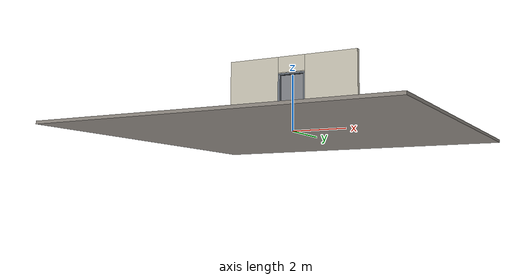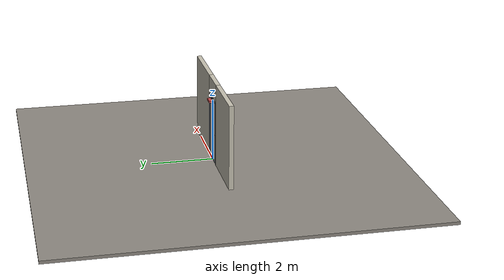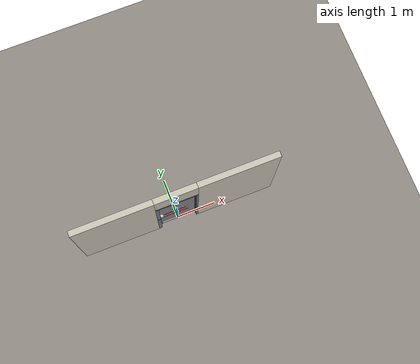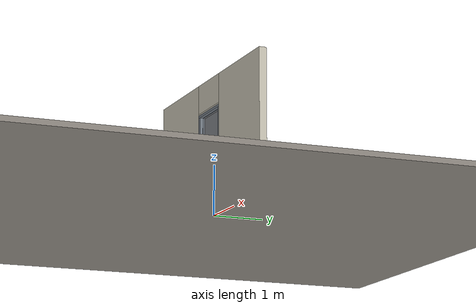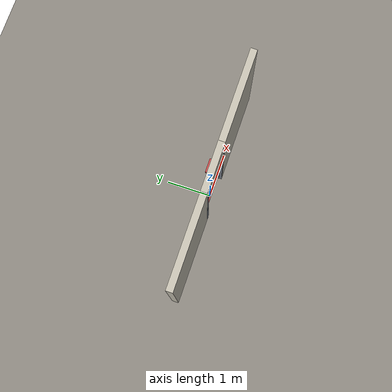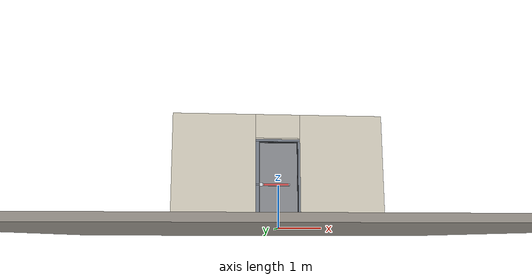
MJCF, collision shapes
<?xml version="1.0" ?>
<mujoco model="db0773_swing_single_simple">
  <compiler angle="radian" meshdir="../../hardware" texturedir="../../textures" autolimits="true" inertiafromgeom="false"/>
  <option timestep="0.002" integrator="implicitfast" cone="elliptic" impratio="10" noslip_iterations="3">
    <flag multiccd="enable"/>
  </option>
  <size memory="16M"/>
  <default>
    <geom condim="4" solref="0.005 1" solimp="0.95 0.99 0.001"/>
    <joint solreflimit="0.005 1" solimplimit="0.95 0.99 0.001"/>
    <tendon solreflimit="0.005 1"/>
    <equality solref="0.002 1"/>
  </default>
  <visual>
    <headlight ambient="0.4 0.4 0.4" diffuse="0.7 0.7 0.7" specular="0.2 0.2 0.2"/>
    <quality shadowsize="4096"/>
    <map znear="0.01" zfar="60"/>
  </visual>
  <asset>
    <mesh name="closer_body_fdc4667657" file="closer_body_fdc4667657.obj"/>
    <mesh name="hinge_e22b26c0c1" file="hinge_e22b26c0c1.obj"/>
    <mesh name="hinge_jamb_e1d088f8dc" file="hinge_jamb_e1d088f8dc.obj"/>
    <mesh name="pull_1e5d69a91a" file="pull_1e5d69a91a.obj"/>
    <mesh name="touchbar_pad_2729a067b4" file="touchbar_pad_2729a067b4.obj"/>
    <material name="mat_floor" rgba="0.55 0.53 0.5 1" specular="0.2" shininess="0.15" reflectance="0"/>
    <material name="mat_wall" rgba="0.78 0.76 0.7 1" specular="0.2" shininess="0.1" reflectance="0"/>
    <material name="mat_leaf" rgba="0.5 0.51 0.53 1" specular="0.23" shininess="0.33" reflectance="0.02"/>
    <material name="mat_hinge" rgba="0.65 0.66 0.68 1" specular="0.74" shininess="0.5" reflectance="0.36"/>
    <material name="mat_op_aluminum" rgba="0.8 0.81 0.83 1" specular="0.8" shininess="0.6" reflectance="0.4"/>
    <material name="mat_op_stainless" rgba="0.75 0.76 0.77 1" specular="0.8" shininess="0.65" reflectance="0.4"/>
    <material name="mat_bolt" rgba="0.75 0.76 0.77 1" specular="0.8" shininess="0.65" reflectance="0.4"/>
    <material name="mat_frame" rgba="0.45 0.48 0.52 1" specular="0.32" shininess="0.6" reflectance="0.08"/>
    <material name="mat_seal" rgba="0.1 0.1 0.1 1" specular="0.2" shininess="0.1" reflectance="0"/>
    <material name="mat_closer" rgba="0.22 0.17 0.13 1" specular="0.8" shininess="0.6" reflectance="0.4"/>
    <material name="mat_kick" rgba="0.75 0.76 0.77 1" specular="0.8" shininess="0.65" reflectance="0.4"/>
    <material name="mat_exit_sign" rgba="0.85 0.1 0.1 1" specular="0.2" shininess="0.6" reflectance="0"/>
    <material name="mat_sign_bracket" rgba="0.8 0.81 0.83 1" specular="0.8" shininess="0.6" reflectance="0.4"/>
    <material name="mat_sign" rgba="0.75 0.76 0.77 1" specular="0.8" shininess="0.65" reflectance="0.4"/>
    <texture name="skybox" type="skybox" builtin="gradient" rgb1="0.6 0.7 0.85" rgb2="0.9 0.92 0.95" width="256" height="256"/>
  </asset>
  <worldbody>
    <light name="sun" pos="1.5 -2.5 4" dir="-0.3 0.5 -0.8" directional="true" diffuse="0.8 0.8 0.8" specular="0.3 0.3 0.3" castshadow="true"/>
    <light name="fill" pos="-1.5 2.5 3" dir="0.3 -0.5 -0.7" directional="true" diffuse="0.35 0.35 0.4" castshadow="false"/>
    <camera name="robot_view" pos="0 -2.585687 1.734312" xyaxes="1 0 0 0 0.26963 0.962964" fovy="52"/>
    <camera name="far_view" pos="0 2.498687 1.734312" xyaxes="-1 0 0 0 -0.26963 0.962964" fovy="52"/>
    <camera name="iso" pos="-1.932062 -2.178937 2.141063" xyaxes="0.741536 -0.670913 0 0.242917 0.268487 0.932151" fovy="46"/>
    <camera name="detail_handle" pos="-0.1865 -0.718 1.296" xyaxes="0.97561 0.219512 0 -0.070934 0.315262 0.94635" fovy="38"/>
    <geom name="floor" type="box" size="6 6 0.05" pos="0 0 -0.05" material="mat_floor" group="0" contype="1" conaffinity="1" friction="0.8 0.005 0.0001" density="2400"/>
    <geom name="wall_left" type="box" size="0.97975 0.0725 1.35" pos="-1.52025 -0.0435 1.35" material="mat_wall" group="0" contype="1" conaffinity="1" friction="0.6 0.005 0.0001" density="800"/>
    <geom name="wall_right" type="box" size="0.99475 0.0725 1.35" pos="1.50525 -0.0435 1.35" material="mat_wall" group="0" contype="1" conaffinity="1" friction="0.6 0.005 0.0001" density="800"/>
    <geom name="wall_header" type="box" size="0.5255 0.0725 0.2875" pos="-0.015 -0.0435 2.4125" material="mat_wall" group="0" contype="1" conaffinity="1" friction="0.6 0.005 0.0001" density="800"/>
    <geom name="hinge_0_jamb" type="mesh" mesh="hinge_jamb_e1d088f8dc" pos="0.4575 0.029 0.259" quat="0 0 0 1" material="mat_hinge" group="1" contype="0" conaffinity="0" density="7850"/>
    <geom name="hinge_1_jamb" type="mesh" mesh="hinge_jamb_e1d088f8dc" pos="0.4575 0.029 1.025" quat="0 0 0 1" material="mat_hinge" group="1" contype="0" conaffinity="0" density="7850"/>
    <geom name="hinge_2_jamb" type="mesh" mesh="hinge_jamb_e1d088f8dc" pos="0.4575 0.029 1.861" quat="0 0 0 1" material="mat_hinge" group="1" contype="0" conaffinity="0" density="7850"/>
    <geom name="jamb_hinge" type="box" size="0.025 0.0725 1.0225" pos="0.4855 -0.0435 1.0225" material="mat_frame" group="0" contype="1" conaffinity="1" friction="0.6 0.005 0.0001" density="300"/>
    <geom name="strike_1016_wall_n" type="box" size="0.04 0.0305 0.02" pos="-0.5005 -0.0855 1.016" material="mat_frame" group="0" contype="1" conaffinity="1" friction="0.6 0.005 0.0001" density="300"/>
    <geom name="strike_1016_wall_p" type="box" size="0.04 0.008 0.02" pos="-0.5005 -0.025 1.016" material="mat_frame" group="0" contype="1" conaffinity="1" friction="0.6 0.005 0.0001" density="300"/>
    <geom name="strike_1016_ramp" type="box" size="0.04 0.034482 0.02" pos="-0.508781 0.0044 1.016" quat="0.989198 0 0 0.146587" material="mat_frame" group="0" contype="1" conaffinity="1" friction="0.12 0.005 0.0001" density="300"/>
    <geom name="strike_1016_back" type="box" size="0.0285 0.011 0.02" pos="-0.512 -0.044 1.016" material="mat_frame" group="0" contype="1" conaffinity="1" friction="0.6 0.005 0.0001" density="300"/>
    <geom name="jamb_strike_0" type="box" size="0.04 0.0725 0.498" pos="-0.5005 -0.0435 0.498" material="mat_frame" group="0" contype="1" conaffinity="1" friction="0.6 0.005 0.0001" density="300"/>
    <geom name="jamb_strike_1" type="box" size="0.04 0.0725 0.5045" pos="-0.5005 -0.0435 1.5405" material="mat_frame" group="0" contype="1" conaffinity="1" friction="0.6 0.005 0.0001" density="300"/>
    <geom name="jamb_head" type="box" size="0.5255 0.0725 0.025" pos="-0.015 -0.0435 2.07" material="mat_frame" group="0" contype="1" conaffinity="1" friction="0.6 0.005 0.0001" density="300"/>
    <geom name="head_stud" type="box" size="0.5255 0.0725 0.015" pos="-0.015 -0.0435 2.11" material="mat_wall" group="0" contype="1" conaffinity="1" friction="0.6 0.005 0.0001" density="500"/>
    <geom name="stop_hinge" type="box" size="0.0055 0.016 1.0225" pos="0.455 -0.0385 1.0225" material="mat_frame" group="0" contype="1" conaffinity="1" friction="0.6 0.005 0.0001" density="300"/>
    <geom name="stop_strike" type="box" size="0.0055 0.016 0.48425" pos="-0.455 -0.0385 0.48425" material="mat_frame" group="0" contype="1" conaffinity="1" friction="0.6 0.005 0.0001" density="300"/>
    <geom name="stop_strike_1" type="box" size="0.0055 0.016 0.49075" pos="-0.455 -0.0385 1.55425" material="mat_frame" group="0" contype="1" conaffinity="1" friction="0.6 0.005 0.0001" density="300"/>
    <geom name="stop_head" type="box" size="0.4605 0.016 0.0055" pos="0 -0.0385 2.0395" material="mat_frame" group="0" contype="1" conaffinity="1" friction="0.6 0.005 0.0001" density="300"/>
    <geom name="seal_hinge" type="box" size="0.004 0.0025 1.0225" pos="0.4575 -0.0245 1.0225" material="mat_seal" group="1" contype="0" conaffinity="0" density="1100"/>
    <geom name="seal_strike" type="box" size="0.004 0.0025 0.48425" pos="-0.4575 -0.0245 0.48425" material="mat_seal" group="1" contype="0" conaffinity="0" density="1100"/>
    <geom name="seal_strike_1" type="box" size="0.004 0.0025 0.49075" pos="-0.4575 -0.0245 1.55425" material="mat_seal" group="1" contype="0" conaffinity="0" density="1100"/>
    <geom name="seal_head" type="box" size="0.4405 0.0025 0.008" pos="0 -0.0245 2.033" material="mat_seal" group="1" contype="0" conaffinity="0" density="1100"/>
    <site name="approach_point" pos="0 -1.5 0" quat="1 0 0 0" size="0.05" rgba="0.2 0.9 0.2 0.5" group="4"/>
    <site name="goal_point" pos="0 1.5 0" quat="1 0 0 0" size="0.05" rgba="0.2 0.9 0.2 0.5" group="4"/>
    <site name="door_plane_center" pos="0 0 1.0225" quat="1 0 0 0" size="0.02" rgba="0.2 0.9 0.2 0.5" group="4"/>
    <body name="leaf" pos="0.4605 0 0">
      <inertial pos="-0.429893 0.014033 1.194463" mass="51.938936" quat="0.517276 -0.519647 -0.494421 -0.466841" diaginertia="3.229056097 22.659189073 25.789242585"/>
      <joint name="leaf_hinge" type="hinge" axis="0 0 -1" pos="-0.003 0.029 0" limited="true" range="0 1.832596" solreflimit="0.02 1" damping="12.25611" frictionloss="5.15156" stiffness="11.911156" springref="-1.783202" armature="0.02"/>
      <geom name="leaf_slab" type="box" size="0.457 0.022 1.016" pos="-0.46 0 1.025" material="mat_leaf" group="0" contype="1" conaffinity="1" friction="0.4 0.005 0.0001" density="1"/>
      <geom name="hinge_0" type="mesh" mesh="hinge_e22b26c0c1" pos="-0.003 0.029 0.259" quat="0 0 0 1" material="mat_hinge" group="1" contype="0" conaffinity="0" density="7850"/>
      <geom name="hinge_1" type="mesh" mesh="hinge_e22b26c0c1" pos="-0.003 0.029 1.025" quat="0 0 0 1" material="mat_hinge" group="1" contype="0" conaffinity="0" density="7850"/>
      <geom name="hinge_2" type="mesh" mesh="hinge_e22b26c0c1" pos="-0.003 0.029 1.861" quat="0 0 0 1" material="mat_hinge" group="1" contype="0" conaffinity="0" density="7850"/>
      <geom name="leaf_exit_device_rail" type="box" size="0.31705 0.006 0.025" pos="-0.51995 -0.028 1.016" material="mat_op_aluminum" group="0" contype="1" conaffinity="1" friction="0.6 0.005 0.0001" density="3000"/>
      <geom name="leaf_exit_device_rail_end_n" type="box" size="0.01 0.0325 0.025" pos="-0.827 -0.0545 1.016" material="mat_op_aluminum" group="0" contype="1" conaffinity="1" friction="0.6 0.005 0.0001" density="3000"/>
      <geom name="leaf_exit_device_rail_end_p" type="box" size="0.01 0.0325 0.025" pos="-0.2129 -0.0545 1.016" material="mat_op_aluminum" group="0" contype="1" conaffinity="1" friction="0.6 0.005 0.0001" density="3000"/>
      <geom name="leaf_exit_device_case" type="box" size="0.034 0.034125 0.0375" pos="-0.871 -0.056125 1.016" material="mat_op_aluminum" group="0" contype="1" conaffinity="1" friction="0.6 0.005 0.0001" density="3000"/>
      <geom name="leaf_far_pull_p" type="mesh" mesh="pull_1e5d69a91a" pos="-0.827 0.022 1.016" quat="0 0 0.707107 0.707107" material="mat_op_stainless" group="1" contype="0" conaffinity="0" density="3000"/>
      <geom name="leaf_far_pull_col_p" type="capsule" size="0.0095 0.08" pos="-0.827 0.082 1.016" material="mat_op_stainless" group="3" contype="1" conaffinity="1" rgba="0.8 0.3 0.3 0.25" friction="0.7 0.01 0.0001" density="3000"/>
      <geom name="closer_body" type="mesh" mesh="closer_body_fdc4667657" pos="-0.3 0.022 1.952" quat="0 0 0.707107 0.707107" material="mat_closer" group="1" contype="0" conaffinity="0" density="2000"/>
      <geom name="closer_body_col" type="box" size="0.145 0.05 0.035" pos="-0.3 0.072 1.952" material="mat_closer" group="3" contype="1" conaffinity="1" rgba="0.8 0.3 0.3 0.25" friction="0.6 0.005 0.0001" density="2000"/>
      <geom name="kick_plate_n" type="box" size="0.427 0.0008 0.125" pos="-0.46 -0.0228 0.144" material="mat_kick" group="2" contype="0" conaffinity="0" density="7900"/>
      <site name="leaf_far_pull_grip_p" pos="-0.827 0.082 1.016" quat="1 0 0 0" size="0.012" rgba="0.2 0.9 0.2 0.5" group="4"/>
      <site name="leaf_edge_mid" pos="-0.917 0 1.016" quat="1 0 0 0" size="0.02" rgba="0.2 0.9 0.2 0.5" group="4"/>
      <body name="leaf_exit_device" pos="-0.51995 -0.022 1.016">
        <inertial pos="0 -0.05 0" mass="4.76361" quat="0 0 -0.707107 0.707107" diaginertia="0.00116113 0.137653089 0.138099678"/>
        <joint name="leaf_exit_device_slide" type="slide" axis="0 1 0" limited="true" range="0 0.016" damping="117.294962" frictionloss="0.5" stiffness="700" springref="-0.011429" armature="0.15"/>
        <geom name="leaf_exit_device_pad" type="mesh" mesh="touchbar_pad_2729a067b4" pos="0 0 0" quat="0 0 -0.707107 0.707107" material="mat_op_aluminum" group="1" contype="0" conaffinity="0" density="3000"/>
        <geom name="leaf_exit_device_pad_col" type="box" size="0.29405 0.015 0.0225" pos="0 -0.05 0" material="mat_op_aluminum" group="3" contype="1" conaffinity="1" rgba="0.8 0.3 0.3 0.25" friction="0.8 0.01 0.0001" density="3000"/>
        <site name="leaf_exit_device_push" pos="0 -0.065 0" quat="1 0 0 0" size="0.015" rgba="0.2 0.9 0.2 0.5" group="4"/>
      </body>
      <body name="leaf_latch_bolt" pos="-0.917 -0.044 1.016">
        <inertial pos="0.0055 0 0" mass="0.102826" quat="0.92388 0.382683 0 0" diaginertia="0.000004365 0.000018287 0.000018287"/>
        <joint name="leaf_latch_bolt_slide" type="slide" axis="1 0 0" limited="true" range="0 0.019" damping="2" frictionloss="0.3" stiffness="800" springref="-0.01" armature="0.1"/>
        <geom name="leaf_latch_bolt_capsule" type="capsule" size="0.0095 0.015" pos="0.0055 0 0" quat="0.707107 0 -0.707107 0" material="mat_bolt" group="0" contype="1" conaffinity="1" friction="0.2 0.005 0.0001" density="8500"/>
      </body>
    </body>
  </worldbody>
  <tendon>
    <fixed name="leaf_latch_bolt_coupling" limited="true" range="0 10">
      <joint joint="leaf_latch_bolt_slide" coef="1"/>
      <joint joint="leaf_exit_device_slide" coef="-1.357143"/>
    </fixed>
  </tendon>
  <sensor>
    <jointpos name="leaf_hinge_pos" joint="leaf_hinge"/>
    <jointvel name="leaf_hinge_vel" joint="leaf_hinge"/>
    <jointpos name="leaf_exit_device_slide_pos" joint="leaf_exit_device_slide"/>
    <jointvel name="leaf_exit_device_slide_vel" joint="leaf_exit_device_slide"/>
    <jointpos name="leaf_latch_bolt_slide_pos" joint="leaf_latch_bolt_slide"/>
    <jointvel name="leaf_latch_bolt_slide_vel" joint="leaf_latch_bolt_slide"/>
  </sensor>
</mujoco>
